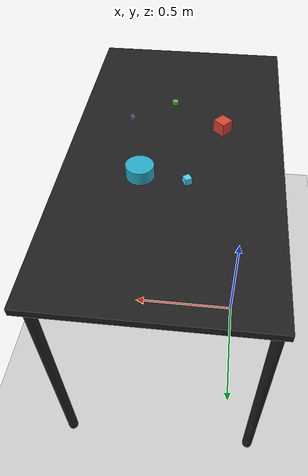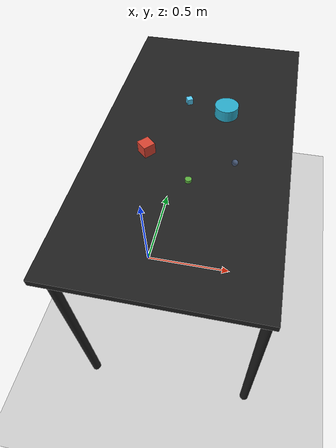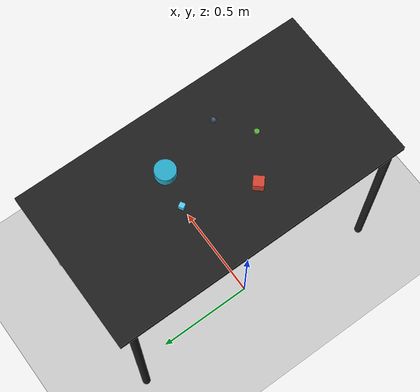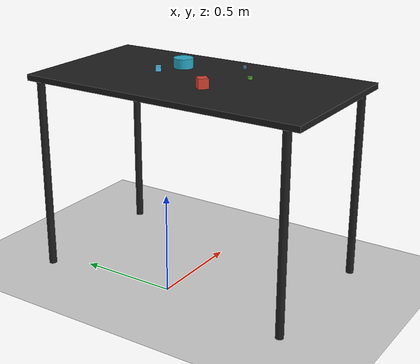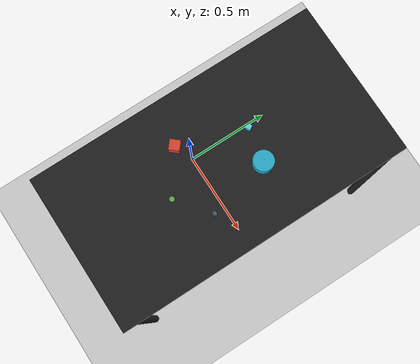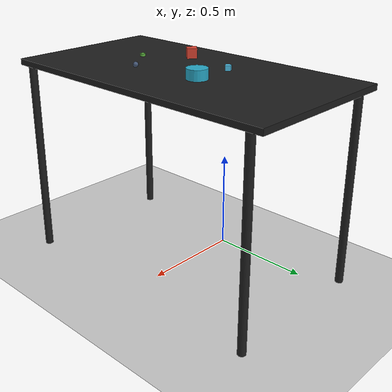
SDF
<?xml version="1.0" ?>
<sdf version="1.6">
  <world name="arm_world">
    <plugin filename="gz-sim-physics-system" name="gz::sim::systems::Physics">
      <engine>
        <filename>libgz-physics-bullet-featherstone-plugin.so</filename>
      </engine>
    </plugin>
    <plugin filename="gz-sim-user-commands-system" name="gz::sim::systems::UserCommands"/>
    <plugin filename="gz-sim-scene-broadcaster-system" name="gz::sim::systems::SceneBroadcaster"/>
    <plugin filename="gz-sim-sensors-system" name="gz::sim::systems::Sensors">
      <render_engine>ogre2</render_engine>
    </plugin>
    <gravity>0.0 0.0 -9.8</gravity>
    <scene>
      <shadows>false</shadows>
    </scene>
    <gui>
      <camera name="user_camera">
        <pose>0.75 -0.75 1.4 0 0.29 2.21</pose>
      </camera>
    </gui>
    <include>
      <uri>https://fuel.gazebosim.org/1.0/OpenRobotics/models/Sun</uri>
    </include>
    <model name="table">
      <static>true</static>
      <include>
        <uri>model://table</uri>
      </include>
      <pose>0.29 0 0 0 0 1.5708</pose>
    </model>
    <model name="ground_plane">
      <static>true</static>
      <link name="link">
        <collision name="collision">
          <geometry>
            <plane>
              <normal>0 0 1</normal>
            </plane>
          </geometry>
          <surface>
            <friction>
              <ode>
                <mu>1.0</mu>
                <mu2>1.0</mu2>
              </ode>
            </friction>
          </surface>
        </collision>
        <visual name="visual">
          <geometry>
            <plane>
              <normal>0 0 1</normal>
              <size>100 100</size>
            </plane>
          </geometry>
          <material>
            <ambient>0.8 0.8 0.8 1</ambient>
            <diffuse>0.8 0.8 0.8 1</diffuse>
            <specular>0.8 0.8 0.8 1</specular>
          </material>
        </visual>
      </link>
    </model>
    <model name="cylinder_s_0">
      <pose>0.318 -0.264 1.05 0 0 2.76</pose>
      <link name="cylinder_s_0_link">
        <collision name="cylinder_s_0_collision">
          <geometry>
            <cylinder>
              <radius>0.0125</radius>
              <length>0.0125</length>
            </cylinder>
          </geometry>
        </collision>
        <visual name="cylinder_s_0_visual">
          <geometry>
            <cylinder>
              <radius>0.0125</radius>
              <length>0.0125</length>
            </cylinder>
          </geometry>
          <material>
            <ambient>0.35 0.68 0.24 1</ambient>
            <diffuse>0.35 0.68 0.24 1</diffuse>
          </material>
        </visual>
        <velocity_decay>
          <linear>1</linear>
          <angular>1</angular>
        </velocity_decay>
      </link>
    </model>
    <model name="cube_s_1">
      <pose>0.229 0.199 1.05 0 0 2.1</pose>
      <link name="cube_s_1_link">
        <collision name="cube_s_1_collision">
          <geometry>
            <box>
              <size>0.025 0.025 0.025</size>
            </box>
          </geometry>
        </collision>
        <visual name="cube_s_1_visual">
          <geometry>
            <box>
              <size>0.025 0.025 0.025</size>
            </box>
          </geometry>
          <material>
            <ambient>0.33 0.81 0.98 1</ambient>
            <diffuse>0.33 0.81 0.98 1</diffuse>
          </material>
        </visual>
        <velocity_decay>
          <linear>1</linear>
          <angular>1</angular>
        </velocity_decay>
      </link>
    </model>
    <model name="cube_m_2">
      <pose>0.122 -0.125 1.05 0 0 0.85</pose>
      <link name="cube_m_2_link">
        <collision name="cube_m_2_collision">
          <geometry>
            <box>
              <size>0.05 0.05 0.05</size>
            </box>
          </geometry>
        </collision>
        <visual name="cube_m_2_visual">
          <geometry>
            <box>
              <size>0.05 0.05 0.05</size>
            </box>
          </geometry>
          <material>
            <ambient>0.84 0.26 0.19 1</ambient>
            <diffuse>0.84 0.26 0.19 1</diffuse>
          </material>
        </visual>
        <velocity_decay>
          <linear>1</linear>
          <angular>1</angular>
        </velocity_decay>
      </link>
    </model>
    <model name="sphere_s_3">
      <pose>0.474 -0.143 1.05 0 0 4.33</pose>
      <link name="sphere_s_3_link">
        <collision name="sphere_s_3_collision">
          <geometry>
            <sphere>
              <radius>0.0125</radius>
            </sphere>
          </geometry>
        </collision>
        <visual name="sphere_s_3_visual">
          <geometry>
            <sphere>
              <radius>0.0125</radius>
            </sphere>
          </geometry>
          <material>
            <ambient>0.27 0.34 0.46 1</ambient>
            <diffuse>0.27 0.34 0.46 1</diffuse>
          </material>
        </visual>
        <velocity_decay>
          <linear>1</linear>
          <angular>1</angular>
        </velocity_decay>
      </link>
    </model>
    <model name="cylinder_l_4">
      <pose>0.397 0.166 1.05 0 0 3.91</pose>
      <link name="cylinder_l_4_link">
        <collision name="cylinder_l_4_collision">
          <geometry>
            <cylinder>
              <radius>0.05</radius>
              <length>0.05</length>
            </cylinder>
          </geometry>
        </collision>
        <visual name="cylinder_l_4_visual">
          <geometry>
            <cylinder>
              <radius>0.05</radius>
              <length>0.05</length>
            </cylinder>
          </geometry>
          <material>
            <ambient>0.16 0.67 0.79 1</ambient>
            <diffuse>0.16 0.67 0.79 1</diffuse>
          </material>
        </visual>
        <velocity_decay>
          <linear>1</linear>
          <angular>1</angular>
        </velocity_decay>
      </link>
    </model>
  </world>
</sdf>

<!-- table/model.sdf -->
<sdf version="1.5">
  <model name="table">
    <static>true</static>
    <link name="link">
      <collision name="surface">
        <pose>0 0 1.0 0 0 0</pose>
        <geometry>
          <box>
            <size>1.5 0.8 0.03</size>
          </box>
        </geometry>
        <surface>
          <friction>
            <ode>
              <mu>0.6</mu>
              <mu2>0.6</mu2>
            </ode>
          </friction>
        </surface>
      </collision>
      <visual name="surface">
        <pose>0 0 1.0 0 0 0</pose>
        <geometry>
          <box>
            <size>1.5 0.8 0.03</size>
          </box>
        </geometry>
        <material>
          <script>
            <uri>file://media/materials/scripts/gazebo.material</uri>
            <name>Gazebo/Black</name>
          </script>
        </material>
      </visual>
      <collision name="front_left_leg">
        <pose>0.68 0.38 0.5 0 0 0</pose>
        <geometry>
          <cylinder>
            <radius>0.02</radius>
            <length>1.0</length>
          </cylinder>
        </geometry>
      </collision>
      <visual name="front_left_leg">
        <pose>0.68 0.38 0.5 0 0 0</pose>
        <geometry>
          <cylinder>
            <radius>0.02</radius>
            <length>1.0</length>
          </cylinder>
        </geometry>
        <material>
          <script>
            <uri>file://media/materials/scripts/gazebo.material</uri>
            <name>Gazebo/Black</name>
          </script>
        </material>
      </visual>
      <collision name="front_right_leg">
        <pose>0.68 -0.38 0.5 0 0 0</pose>
        <geometry>
          <cylinder>
            <radius>0.02</radius>
            <length>1.0</length>
          </cylinder>
        </geometry>
      </collision>
      <visual name="front_right_leg">
        <pose>0.68 -0.38 0.5 0 0 0</pose>
        <geometry>
          <cylinder>
            <radius>0.02</radius>
            <length>1.0</length>
          </cylinder>
        </geometry>
        <material>
          <script>
            <uri>file://media/materials/scripts/gazebo.material</uri>
            <name>Gazebo/Black</name>
          </script>
        </material>
      </visual>
      <collision name="back_right_leg">
        <pose>-0.68 -0.38 0.5 0 0 0</pose>
        <geometry>
          <cylinder>
            <radius>0.02</radius>
            <length>1.0</length>
          </cylinder>
        </geometry>
      </collision>
      <visual name="back_right_leg">
        <pose>-0.68 -0.38 0.5 0 0 0</pose>
        <geometry>
          <cylinder>
            <radius>0.02</radius>
            <length>1.0</length>
          </cylinder>
        </geometry>
        <material>
          <script>
            <uri>file://media/materials/scripts/gazebo.material</uri>
            <name>Gazebo/Black</name>
          </script>
        </material>
      </visual>
      <collision name="back_left_leg">
        <pose>-0.68 0.38 0.5 0 0 0</pose>
        <geometry>
          <cylinder>
            <radius>0.02</radius>
            <length>1.0</length>
          </cylinder>
        </geometry>
      </collision>
      <visual name="back_left_leg">
        <pose>-0.68 0.38 0.5 0 0 0</pose>
        <geometry>
          <cylinder>
            <radius>0.02</radius>
            <length>1.0</length>
          </cylinder>
        </geometry>
        <material>
          <script>
            <uri>file://media/materials/scripts/gazebo.material</uri>
            <name>Gazebo/Black</name>
          </script>
        </material>
      </visual>
    </link>
  </model>
</sdf>
